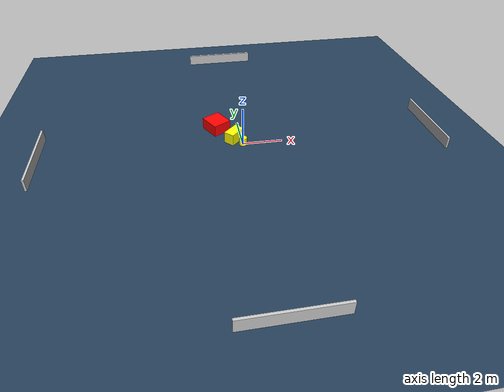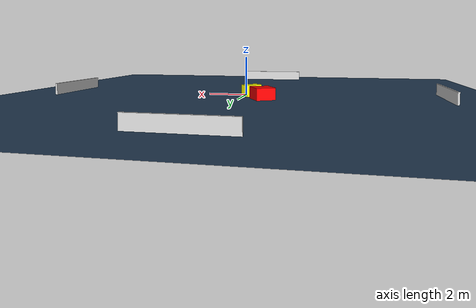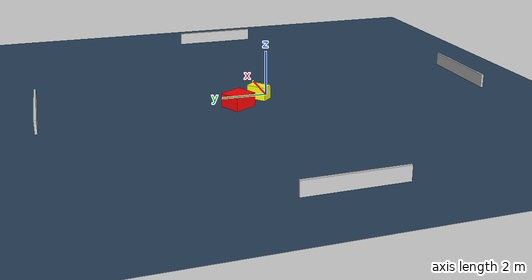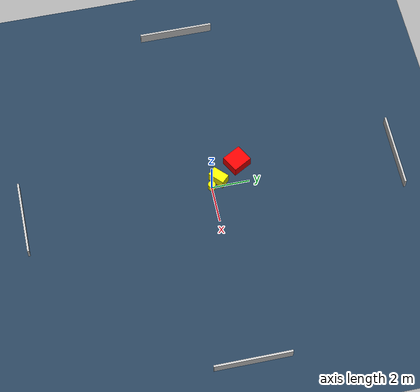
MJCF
<?xml version="1.0" ?>
<mujoco model="generated_environment">
  <option timestep="0.01" integrator="RK4" cone="elliptic"/>
  <default>
    <geom density="1"/>
  </default>
  <asset>
    <texture builtin="gradient" height="3072" name="skybox" rgb1="0.3 0.5 0.7" rgb2="0 0 0" type="skybox" width="512"/>
    <texture builtin="checker" height="300" name="groundplane" rgb1="0.2 0.3 0.4" rgb2="0.1 0.2 0.3" type="2d" width="300"/>
    <material name="groundplane" reflectance="0.2" texrepeat="5 5" texture="groundplane"/>
  </asset>
  <worldbody>
    <light dir="0 0 -1" directional="true" pos="0 0 1.5"/>
    <geom condim="3" friction="0.5 0.005 0.001" material="groundplane" name="floor" pos="0 0 0" size="0 0 0.05" type="plane"/>
    <body name="walls">
      <geom name="wall_1" condim="4" pos="-10.0 0.0 0.3" rgba="0.800000011920929 0.800000011920929 0.800000011920929 1.0" size="0.05 2.0 0.3" type="box"/>
      <geom name="wall_2" condim="4" pos="10.0 0.0 0.3" rgba="0.800000011920929 0.800000011920929 0.800000011920929 1.0" size="0.05 2.0 0.3" type="box"/>
      <geom name="wall_3" condim="4" pos="0.0 -10.0 0.3" rgba="0.800000011920929 0.800000011920929 0.800000011920929 1.0" size="2.0 0.05 0.3" type="box"/>
      <geom name="wall_4" condim="4" pos="0.0 10.0 0.3" rgba="0.800000011920929 0.800000011920929 0.800000011920929 1.0" size="2.0 0.05 0.3" type="box"/>
    </body>
    <body name="robot">
      <joint name="joint_x" type="slide" pos="0 0 0" axis="1 0 0"/>
      <joint name="joint_y" type="slide" pos="0 0 0" axis="0 1 0"/>
      <geom name="robot" type="cylinder" pos="0.0 0.0 0.2" size="0.2 0.2 0.0" mass="5.0" friction="1.0 0.005 0.0001" condim="4" rgba="1.0 1.0 0.0 1.0"/>
    </body>
    <body name="obstacle_1_movable">
      <geom name="obstacle_1_movable" condim="4" pos="-0.3795110983710347 0.4395822551242169 0.3" euler="0 0 43.95177360257776" friction="0.0 0.005 0.001" rgba="1.0 1.0 0.0 1.0" size="0.4544684669628448 0.2699313297941586 0.3" type="box" mass="0.1"/>
      <joint type="free"/>
    </body>
    <body name="obstacle_2_static">
      <geom name="obstacle_2_static" condim="4" pos="-1.160590375869125 1.6039467609868743 0.3" euler="0 0 209.42249859534112" friction="0.0 0.005 0.001" rgba="1.0 0.0 0.0 1.0" size="0.48845495070966827 0.5418569055554234 0.3" type="box"/>
    </body>
  </worldbody>
  <actuator>
    <motor name="actuator_x" joint="joint_x" gear="1" ctrlrange="-1 1"/>
    <motor name="actuator_y" joint="joint_y" gear="1" ctrlrange="-1 1"/>
  </actuator>
</mujoco>
